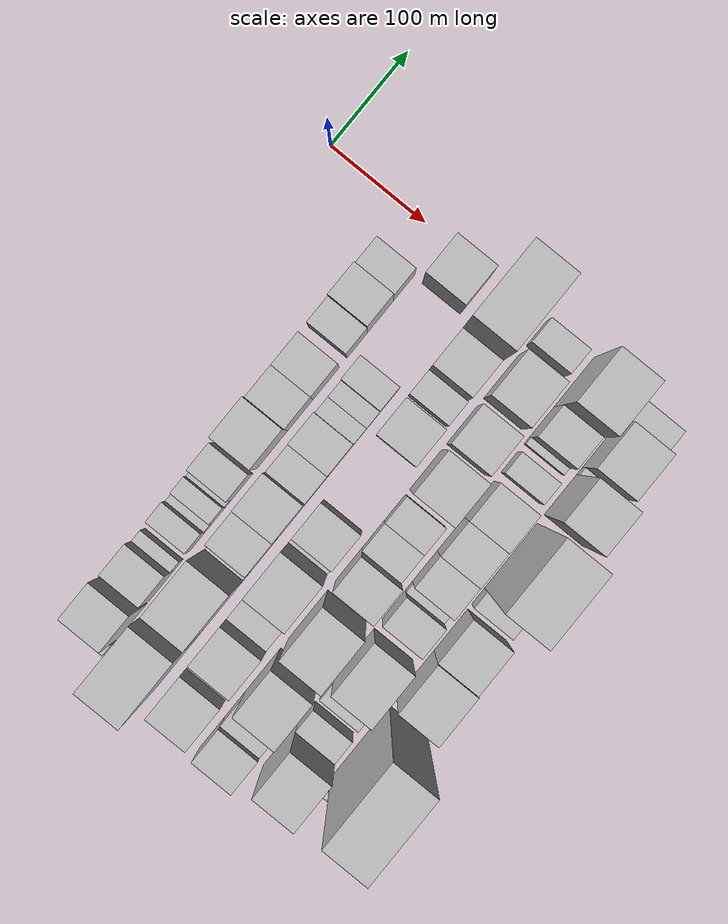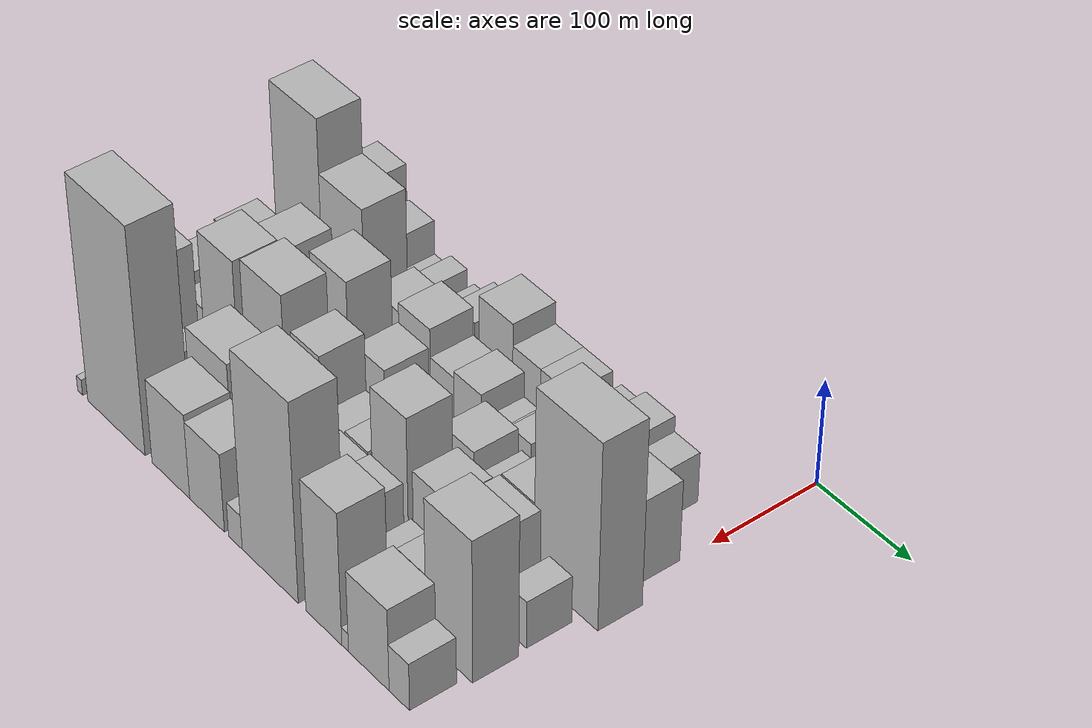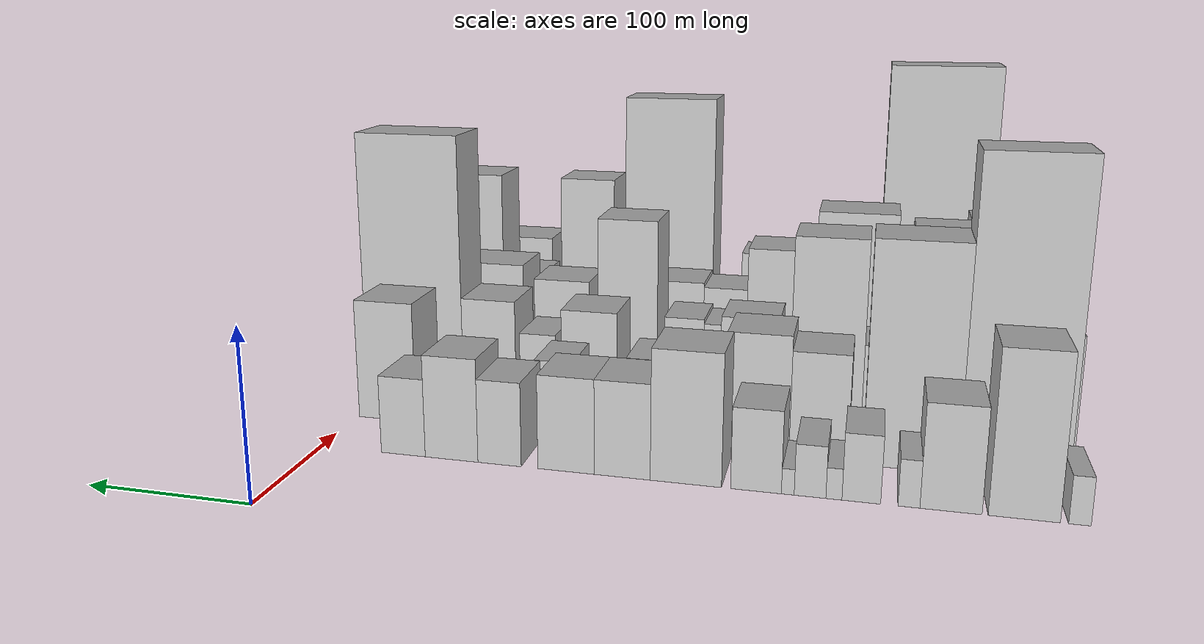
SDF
<sdf version="1.6">
 <world name="default">
  <model name="building_14">
   <static>1</static>
   <pose>100.0000 -428.7191 0 0.000000 0.000000 0.000000</pose>
   <link name="link">
    <pose>0 0 13.50 0 0 0</pose>
    <collision name="collision"><geometry><box><size>40.0000 10.9041 27.0000</size></box></geometry></collision>
    <visual name="visual">
     <cast_shadows>0</cast_shadows>
     <geometry><box><size>40.0000 10.9041 27.0000</size></box></geometry>
     <material>
      <script>
       <uri>model://HANNAS_wall/materials/scripts</uri>
       <uri>model://HANNAS_wall/materials/textures</uri>
       <name>vrc/HANNAS_wall</name>
      </script>
     </material>
    </visual>
   </link>
  </model>
  <model name="building_15">
   <static>1</static>
   <pose>100.0000 -401.4031 0 0.000000 0.000000 0.000000</pose>
   <link name="link">
    <pose>0 0 46.50 0 0 0</pose>
    <collision name="collision"><geometry><box><size>40.0000 35.7279 93.0000</size></box></geometry></collision>
    <visual name="visual">
     <cast_shadows>0</cast_shadows>
     <geometry><box><size>40.0000 35.7279 93.0000</size></box></geometry>
     <material>
      <script>
       <uri>model://HANNAS_wall/materials/scripts</uri>
       <uri>model://HANNAS_wall/materials/textures</uri>
       <name>vrc/HANNAS_wall</name>
      </script>
     </material>
    </visual>
   </link>
  </model>
  <model name="building_16">
   <static>1</static>
   <pose>100.0000 -364.7239 0 0.000000 0.000000 0.000000</pose>
   <link name="link">
    <pose>0 0 30.00 0 0 0</pose>
    <collision name="collision"><geometry><box><size>40.0000 31.6305 60.0000</size></box></geometry></collision>
    <visual name="visual">
     <cast_shadows>0</cast_shadows>
     <geometry><box><size>40.0000 31.6305 60.0000</size></box></geometry>
     <material>
      <script>
       <uri>model://HANNAS_wall/materials/scripts</uri>
       <uri>model://HANNAS_wall/materials/textures</uri>
       <name>vrc/HANNAS_wall</name>
      </script>
     </material>
    </visual>
   </link>
  </model>
  <model name="building_17">
   <static>1</static>
   <pose>100.0000 -343.2409 0 0.000000 0.000000 0.000000</pose>
   <link name="link">
    <pose>0 0 13.50 0 0 0</pose>
    <collision name="collision"><geometry><box><size>40.0000 11.3354 27.0000</size></box></geometry></collision>
    <visual name="visual">
     <cast_shadows>0</cast_shadows>
     <geometry><box><size>40.0000 11.3354 27.0000</size></box></geometry>
     <material>
      <script>
       <uri>model://HANNAS_wall/materials/scripts</uri>
       <uri>model://HANNAS_wall/materials/textures</uri>
       <name>vrc/HANNAS_wall</name>
      </script>
     </material>
    </visual>
   </link>
  </model>
  <model name="building_18">
   <static>1</static>
   <pose>100.0000 -318.3768 0 0.000000 0.000000 0.000000</pose>
   <link name="link">
    <pose>0 0 19.50 0 0 0</pose>
    <collision name="collision"><geometry><box><size>40.0000 20.3929 39.0000</size></box></geometry></collision>
    <visual name="visual">
     <cast_shadows>0</cast_shadows>
     <geometry><box><size>40.0000 20.3929 39.0000</size></box></geometry>
     <material>
      <script>
       <uri>model://HANNAS_wall/materials/scripts</uri>
       <uri>model://HANNAS_wall/materials/textures</uri>
       <name>vrc/HANNAS_wall</name>
      </script>
     </material>
    </visual>
   </link>
  </model>
  <model name="building_19">
   <static>1</static>
   <pose>100.0000 -303.9066 0 0.000000 0.000000 0.000000</pose>
   <link name="link">
    <pose>0 0 9.00 0 0 0</pose>
    <collision name="collision"><geometry><box><size>40.0000 8.5474 18.0000</size></box></geometry></collision>
    <visual name="visual">
     <cast_shadows>0</cast_shadows>
     <geometry><box><size>40.0000 8.5474 18.0000</size></box></geometry>
     <material>
      <script>
       <uri>model://HANNAS_wall/materials/scripts</uri>
       <uri>model://HANNAS_wall/materials/textures</uri>
       <name>vrc/HANNAS_wall</name>
      </script>
     </material>
    </visual>
   </link>
  </model>
  <model name="building_20">
   <static>1</static>
   <pose>100.0000 -291.0988 0 0.000000 0.000000 0.000000</pose>
   <link name="link">
    <pose>0 0 15.00 0 0 0</pose>
    <collision name="collision"><geometry><box><size>40.0000 17.0682 30.0000</size></box></geometry></collision>
    <visual name="visual">
     <cast_shadows>0</cast_shadows>
     <geometry><box><size>40.0000 17.0682 30.0000</size></box></geometry>
     <material>
      <script>
       <uri>model://HANNAS_wall/materials/scripts</uri>
       <uri>model://HANNAS_wall/materials/textures</uri>
       <name>vrc/HANNAS_wall</name>
      </script>
     </material>
    </visual>
   </link>
  </model>
  <model name="building_21">
   <static>1</static>
   <pose>100.0000 -279.0963 0 0.000000 0.000000 0.000000</pose>
   <link name="link">
    <pose>0 0 7.50 0 0 0</pose>
    <collision name="collision"><geometry><box><size>40.0000 6.9368 15.0000</size></box></geometry></collision>
    <visual name="visual">
     <cast_shadows>0</cast_shadows>
     <geometry><box><size>40.0000 6.9368 15.0000</size></box></geometry>
     <material>
      <script>
       <uri>model://HANNAS_wall/materials/scripts</uri>
       <uri>model://HANNAS_wall/materials/textures</uri>
       <name>vrc/HANNAS_wall</name>
      </script>
     </material>
    </visual>
   </link>
  </model>
  <model name="building_22">
   <static>1</static>
   <pose>100.0000 -261.6597 0 0.000000 0.000000 0.000000</pose>
   <link name="link">
    <pose>0 0 24.00 0 0 0</pose>
    <collision name="collision"><geometry><box><size>40.0000 27.9364 48.0000</size></box></geometry></collision>
    <visual name="visual">
     <cast_shadows>0</cast_shadows>
     <geometry><box><size>40.0000 27.9364 48.0000</size></box></geometry>
     <material>
      <script>
       <uri>model://HANNAS_wall/materials/scripts</uri>
       <uri>model://HANNAS_wall/materials/textures</uri>
       <name>vrc/HANNAS_wall</name>
      </script>
     </material>
    </visual>
   </link>
  </model>
  <model name="building_23">
   <static>1</static>
   <pose>100.0000 -222.5226 0 0.000000 0.000000 0.000000</pose>
   <link name="link">
    <pose>0 0 39.00 0 0 0</pose>
    <collision name="collision"><geometry><box><size>40.0000 40.3378 78.0000</size></box></geometry></collision>
    <visual name="visual">
     <cast_shadows>0</cast_shadows>
     <geometry><box><size>40.0000 40.3378 78.0000</size></box></geometry>
     <material>
      <script>
       <uri>model://HANNAS_wall/materials/scripts</uri>
       <uri>model://HANNAS_wall/materials/textures</uri>
       <name>vrc/HANNAS_wall</name>
      </script>
     </material>
    </visual>
   </link>
  </model>
  <model name="building_24">
   <static>1</static>
   <pose>100.0000 -186.0903 0 0.000000 0.000000 0.000000</pose>
   <link name="link">
    <pose>0 0 28.50 0 0 0</pose>
    <collision name="collision"><geometry><box><size>40.0000 32.5268 57.0000</size></box></geometry></collision>
    <visual name="visual">
     <cast_shadows>0</cast_shadows>
     <geometry><box><size>40.0000 32.5268 57.0000</size></box></geometry>
     <material>
      <script>
       <uri>model://HANNAS_wall/materials/scripts</uri>
       <uri>model://HANNAS_wall/materials/textures</uri>
       <name>vrc/HANNAS_wall</name>
      </script>
     </material>
    </visual>
   </link>
  </model>
  <model name="building_25">
   <static>1</static>
   <pose>100.0000 -153.0803 0 0.000000 0.000000 0.000000</pose>
   <link name="link">
    <pose>0 0 28.50 0 0 0</pose>
    <collision name="collision"><geometry><box><size>40.0000 33.4933 57.0000</size></box></geometry></collision>
    <visual name="visual">
     <cast_shadows>0</cast_shadows>
     <geometry><box><size>40.0000 33.4933 57.0000</size></box></geometry>
     <material>
      <script>
       <uri>model://HANNAS_wall/materials/scripts</uri>
       <uri>model://HANNAS_wall/materials/textures</uri>
       <name>vrc/HANNAS_wall</name>
      </script>
     </material>
    </visual>
   </link>
  </model>
  <model name="building_26">
   <static>1</static>
   <pose>100.0000 -113.0891 0 0.000000 0.000000 0.000000</pose>
   <link name="link">
    <pose>0 0 25.50 0 0 0</pose>
    <collision name="collision"><geometry><box><size>40.0000 26.4892 51.0000</size></box></geometry></collision>
    <visual name="visual">
     <cast_shadows>0</cast_shadows>
     <geometry><box><size>40.0000 26.4892 51.0000</size></box></geometry>
     <material>
      <script>
       <uri>model://HANNAS_wall/materials/scripts</uri>
       <uri>model://HANNAS_wall/materials/textures</uri>
       <name>vrc/HANNAS_wall</name>
      </script>
     </material>
    </visual>
   </link>
  </model>
  <model name="building_27">
   <static>1</static>
   <pose>100.0000 -83.3933 0 0.000000 0.000000 0.000000</pose>
   <link name="link">
    <pose>0 0 31.50 0 0 0</pose>
    <collision name="collision"><geometry><box><size>40.0000 32.9023 63.0000</size></box></geometry></collision>
    <visual name="visual">
     <cast_shadows>0</cast_shadows>
     <geometry><box><size>40.0000 32.9023 63.0000</size></box></geometry>
     <material>
      <script>
       <uri>model://HANNAS_wall/materials/scripts</uri>
       <uri>model://HANNAS_wall/materials/textures</uri>
       <name>vrc/HANNAS_wall</name>
      </script>
     </material>
    </visual>
   </link>
  </model>
  <model name="building_28">
   <static>1</static>
   <pose>100.0000 -52.9506 0 0.000000 0.000000 0.000000</pose>
   <link name="link">
    <pose>0 0 24.00 0 0 0</pose>
    <collision name="collision"><geometry><box><size>40.0000 27.9831 48.0000</size></box></geometry></collision>
    <visual name="visual">
     <cast_shadows>0</cast_shadows>
     <geometry><box><size>40.0000 27.9831 48.0000</size></box></geometry>
     <material>
      <script>
       <uri>model://HANNAS_wall/materials/scripts</uri>
       <uri>model://HANNAS_wall/materials/textures</uri>
       <name>vrc/HANNAS_wall</name>
      </script>
     </material>
    </visual>
   </link>
  </model>
  <model name="building_62">
   <static>1</static>
   <pose>149.0000 -401.1289 0 0.000000 0.000000 0.000000</pose>
   <link name="link">
    <pose>0 0 93.00 0 0 0</pose>
    <collision name="collision"><geometry><box><size>40.0000 59.5573 186.0000</size></box></geometry></collision>
    <visual name="visual">
     <cast_shadows>0</cast_shadows>
     <geometry><box><size>40.0000 59.5573 186.0000</size></box></geometry>
     <material>
      <script>
       <uri>model://HANNAS_wall/materials/scripts</uri>
       <uri>model://HANNAS_wall/materials/textures</uri>
       <name>vrc/HANNAS_wall</name>
      </script>
     </material>
    </visual>
   </link>
  </model>
  <model name="building_63">
   <static>1</static>
   <pose>149.0000 -344.7160 0 0.000000 0.000000 0.000000</pose>
   <link name="link">
    <pose>0 0 67.50 0 0 0</pose>
    <collision name="collision"><geometry><box><size>40.0000 53.2686 135.0000</size></box></geometry></collision>
    <visual name="visual">
     <cast_shadows>0</cast_shadows>
     <geometry><box><size>40.0000 53.2686 135.0000</size></box></geometry>
     <material>
      <script>
       <uri>model://HANNAS_wall/materials/scripts</uri>
       <uri>model://HANNAS_wall/materials/textures</uri>
       <name>vrc/HANNAS_wall</name>
      </script>
     </material>
    </visual>
   </link>
  </model>
  <model name="building_64">
   <static>1</static>
   <pose>149.0000 -313.8645 0 0.000000 0.000000 0.000000</pose>
   <link name="link">
    <pose>0 0 9.00 0 0 0</pose>
    <collision name="collision"><geometry><box><size>40.0000 8.4343 18.0000</size></box></geometry></collision>
    <visual name="visual">
     <cast_shadows>0</cast_shadows>
     <geometry><box><size>40.0000 8.4343 18.0000</size></box></geometry>
     <material>
      <script>
       <uri>model://HANNAS_wall/materials/scripts</uri>
       <uri>model://HANNAS_wall/materials/textures</uri>
       <name>vrc/HANNAS_wall</name>
      </script>
     </material>
    </visual>
   </link>
  </model>
  <model name="building_65">
   <static>1</static>
   <pose>149.0000 -292.6621 0 0.000000 0.000000 0.000000</pose>
   <link name="link">
    <pose>0 0 33.00 0 0 0</pose>
    <collision name="collision"><geometry><box><size>40.0000 33.9706 66.0000</size></box></geometry></collision>
    <visual name="visual">
     <cast_shadows>0</cast_shadows>
     <geometry><box><size>40.0000 33.9706 66.0000</size></box></geometry>
     <material>
      <script>
       <uri>model://HANNAS_wall/materials/scripts</uri>
       <uri>model://HANNAS_wall/materials/textures</uri>
       <name>vrc/HANNAS_wall</name>
      </script>
     </material>
    </visual>
   </link>
  </model>
  <model name="building_66">
   <static>1</static>
   <pose>149.0000 -256.7404 0 0.000000 0.000000 0.000000</pose>
   <link name="link">
    <pose>0 0 37.50 0 0 0</pose>
    <collision name="collision"><geometry><box><size>40.0000 37.8727 75.0000</size></box></geometry></collision>
    <visual name="visual">
     <cast_shadows>0</cast_shadows>
     <geometry><box><size>40.0000 37.8727 75.0000</size></box></geometry>
     <material>
      <script>
       <uri>model://HANNAS_wall/materials/scripts</uri>
       <uri>model://HANNAS_wall/materials/textures</uri>
       <name>vrc/HANNAS_wall</name>
      </script>
     </material>
    </visual>
   </link>
  </model>
  <model name="building_67">
   <static>1</static>
   <pose>149.0000 -223.7566 0 0.000000 0.000000 0.000000</pose>
   <link name="link">
    <pose>0 0 24.00 0 0 0</pose>
    <collision name="collision"><geometry><box><size>40.0000 28.0951 48.0000</size></box></geometry></collision>
    <visual name="visual">
     <cast_shadows>0</cast_shadows>
     <geometry><box><size>40.0000 28.0951 48.0000</size></box></geometry>
     <material>
      <script>
       <uri>model://HANNAS_wall/materials/scripts</uri>
       <uri>model://HANNAS_wall/materials/textures</uri>
       <name>vrc/HANNAS_wall</name>
      </script>
     </material>
    </visual>
   </link>
  </model>
  <model name="building_68">
   <static>1</static>
   <pose>149.0000 -193.5233 0 0.000000 0.000000 0.000000</pose>
   <link name="link">
    <pose>0 0 27.00 0 0 0</pose>
    <collision name="collision"><geometry><box><size>40.0000 32.3714 54.0000</size></box></geometry></collision>
    <visual name="visual">
     <cast_shadows>0</cast_shadows>
     <geometry><box><size>40.0000 32.3714 54.0000</size></box></geometry>
     <material>
      <script>
       <uri>model://HANNAS_wall/materials/scripts</uri>
       <uri>model://HANNAS_wall/materials/textures</uri>
       <name>vrc/HANNAS_wall</name>
      </script>
     </material>
    </visual>
   </link>
  </model>
  <model name="building_69">
   <static>1</static>
   <pose>149.0000 -169.1457 0 0.000000 0.000000 0.000000</pose>
   <link name="link">
    <pose>0 0 15.00 0 0 0</pose>
    <collision name="collision"><geometry><box><size>40.0000 16.3839 30.0000</size></box></geometry></collision>
    <visual name="visual">
     <cast_shadows>0</cast_shadows>
     <geometry><box><size>40.0000 16.3839 30.0000</size></box></geometry>
     <material>
      <script>
       <uri>model://HANNAS_wall/materials/scripts</uri>
       <uri>model://HANNAS_wall/materials/textures</uri>
       <name>vrc/HANNAS_wall</name>
      </script>
     </material>
    </visual>
   </link>
  </model>
  <model name="building_70">
   <static>1</static>
   <pose>149.0000 -152.4753 0 0.000000 0.000000 0.000000</pose>
   <link name="link">
    <pose>0 0 15.00 0 0 0</pose>
    <collision name="collision"><geometry><box><size>40.0000 16.9567 30.0000</size></box></geometry></collision>
    <visual name="visual">
     <cast_shadows>0</cast_shadows>
     <geometry><box><size>40.0000 16.9567 30.0000</size></box></geometry>
     <material>
      <script>
       <uri>model://HANNAS_wall/materials/scripts</uri>
       <uri>model://HANNAS_wall/materials/textures</uri>
       <name>vrc/HANNAS_wall</name>
      </script>
     </material>
    </visual>
   </link>
  </model>
  <model name="building_71">
   <static>1</static>
   <pose>149.0000 -131.6888 0 0.000000 0.000000 0.000000</pose>
   <link name="link">
    <pose>0 0 24.00 0 0 0</pose>
    <collision name="collision"><geometry><box><size>40.0000 24.6163 48.0000</size></box></geometry></collision>
    <visual name="visual">
     <cast_shadows>0</cast_shadows>
     <geometry><box><size>40.0000 24.6163 48.0000</size></box></geometry>
     <material>
      <script>
       <uri>model://HANNAS_wall/materials/scripts</uri>
       <uri>model://HANNAS_wall/materials/textures</uri>
       <name>vrc/HANNAS_wall</name>
      </script>
     </material>
    </visual>
   </link>
  </model>
  <model name="building_72">
   <static>1</static>
   <pose>149.0000 -20.7572 0 0.000000 0.000000 0.000000</pose>
   <link name="link">
    <pose>0 0 39.00 0 0 0</pose>
    <collision name="collision"><geometry><box><size>40.0000 39.0823 78.0000</size></box></geometry></collision>
    <visual name="visual">
     <cast_shadows>0</cast_shadows>
     <geometry><box><size>40.0000 39.0823 78.0000</size></box></geometry>
     <material>
      <script>
       <uri>model://HANNAS_wall/materials/scripts</uri>
       <uri>model://HANNAS_wall/materials/textures</uri>
       <name>vrc/HANNAS_wall</name>
      </script>
     </material>
    </visual>
   </link>
  </model>
  <model name="building_107">
   <static>1</static>
   <pose>198.0000 -419.9244 0 0.000000 0.000000 0.000000</pose>
   <link name="link">
    <pose>0 0 36.00 0 0 0</pose>
    <collision name="collision"><geometry><box><size>40.0000 42.3488 72.0000</size></box></geometry></collision>
    <visual name="visual">
     <cast_shadows>0</cast_shadows>
     <geometry><box><size>40.0000 42.3488 72.0000</size></box></geometry>
     <material>
      <script>
       <uri>model://HANNAS_wall/materials/scripts</uri>
       <uri>model://HANNAS_wall/materials/textures</uri>
       <name>vrc/HANNAS_wall</name>
      </script>
     </material>
    </visual>
   </link>
  </model>
  <model name="building_108">
   <static>1</static>
   <pose>198.0000 -390.8635 0 0.000000 0.000000 0.000000</pose>
   <link name="link">
    <pose>0 0 15.00 0 0 0</pose>
    <collision name="collision"><geometry><box><size>40.0000 15.7730 30.0000</size></box></geometry></collision>
    <visual name="visual">
     <cast_shadows>0</cast_shadows>
     <geometry><box><size>40.0000 15.7730 30.0000</size></box></geometry>
     <material>
      <script>
       <uri>model://HANNAS_wall/materials/scripts</uri>
       <uri>model://HANNAS_wall/materials/textures</uri>
       <name>vrc/HANNAS_wall</name>
      </script>
     </material>
    </visual>
   </link>
  </model>
  <model name="building_109">
   <static>1</static>
   <pose>198.0000 -363.8045 0 0.000000 0.000000 0.000000</pose>
   <link name="link">
    <pose>0 0 52.50 0 0 0</pose>
    <collision name="collision"><geometry><box><size>40.0000 38.3450 105.0000</size></box></geometry></collision>
    <visual name="visual">
     <cast_shadows>0</cast_shadows>
     <geometry><box><size>40.0000 38.3450 105.0000</size></box></geometry>
     <material>
      <script>
       <uri>model://HANNAS_wall/materials/scripts</uri>
       <uri>model://HANNAS_wall/materials/textures</uri>
       <name>vrc/HANNAS_wall</name>
      </script>
     </material>
    </visual>
   </link>
  </model>
  <model name="building_110">
   <static>1</static>
   <pose>198.0000 -330.3335 0 0.000000 0.000000 0.000000</pose>
   <link name="link">
    <pose>0 0 28.50 0 0 0</pose>
    <collision name="collision"><geometry><box><size>40.0000 28.5971 57.0000</size></box></geometry></collision>
    <visual name="visual">
     <cast_shadows>0</cast_shadows>
     <geometry><box><size>40.0000 28.5971 57.0000</size></box></geometry>
     <material>
      <script>
       <uri>model://HANNAS_wall/materials/scripts</uri>
       <uri>model://HANNAS_wall/materials/textures</uri>
       <name>vrc/HANNAS_wall</name>
      </script>
     </material>
    </visual>
   </link>
  </model>
  <model name="building_111">
   <static>1</static>
   <pose>198.0000 -293.7078 0 0.000000 0.000000 0.000000</pose>
   <link name="link">
    <pose>0 0 61.50 0 0 0</pose>
    <collision name="collision"><geometry><box><size>40.0000 44.6543 123.0000</size></box></geometry></collision>
    <visual name="visual">
     <cast_shadows>0</cast_shadows>
     <geometry><box><size>40.0000 44.6543 123.0000</size></box></geometry>
     <material>
      <script>
       <uri>model://HANNAS_wall/materials/scripts</uri>
       <uri>model://HANNAS_wall/materials/textures</uri>
       <name>vrc/HANNAS_wall</name>
      </script>
     </material>
    </visual>
   </link>
  </model>
  <model name="building_112">
   <static>1</static>
   <pose>198.0000 -267.6326 0 0.000000 0.000000 0.000000</pose>
   <link name="link">
    <pose>0 0 9.00 0 0 0</pose>
    <collision name="collision"><geometry><box><size>40.0000 7.4962 18.0000</size></box></geometry></collision>
    <visual name="visual">
     <cast_shadows>0</cast_shadows>
     <geometry><box><size>40.0000 7.4962 18.0000</size></box></geometry>
     <material>
      <script>
       <uri>model://HANNAS_wall/materials/scripts</uri>
       <uri>model://HANNAS_wall/materials/textures</uri>
       <name>vrc/HANNAS_wall</name>
      </script>
     </material>
    </visual>
   </link>
  </model>
  <model name="building_113">
   <static>1</static>
   <pose>198.0000 -245.7372 0 0.000000 0.000000 0.000000</pose>
   <link name="link">
    <pose>0 0 34.50 0 0 0</pose>
    <collision name="collision"><geometry><box><size>40.0000 36.2946 69.0000</size></box></geometry></collision>
    <visual name="visual">
     <cast_shadows>0</cast_shadows>
     <geometry><box><size>40.0000 36.2946 69.0000</size></box></geometry>
     <material>
      <script>
       <uri>model://HANNAS_wall/materials/scripts</uri>
       <uri>model://HANNAS_wall/materials/textures</uri>
       <name>vrc/HANNAS_wall</name>
      </script>
     </material>
    </visual>
   </link>
  </model>
  <model name="building_114">
   <static>1</static>
   <pose>198.0000 -141.5243 0 0.000000 0.000000 0.000000</pose>
   <link name="link">
    <pose>0 0 33.00 0 0 0</pose>
    <collision name="collision"><geometry><box><size>40.0000 37.3771 66.0000</size></box></geometry></collision>
    <visual name="visual">
     <cast_shadows>0</cast_shadows>
     <geometry><box><size>40.0000 37.3771 66.0000</size></box></geometry>
     <material>
      <script>
       <uri>model://HANNAS_wall/materials/scripts</uri>
       <uri>model://HANNAS_wall/materials/textures</uri>
       <name>vrc/HANNAS_wall</name>
      </script>
     </material>
    </visual>
   </link>
  </model>
  <model name="building_115">
   <static>1</static>
   <pose>198.0000 -106.5794 0 0.000000 0.000000 0.000000</pose>
   <link name="link">
    <pose>0 0 24.00 0 0 0</pose>
    <collision name="collision"><geometry><box><size>40.0000 24.5127 48.0000</size></box></geometry></collision>
    <visual name="visual">
     <cast_shadows>0</cast_shadows>
     <geometry><box><size>40.0000 24.5127 48.0000</size></box></geometry>
     <material>
      <script>
       <uri>model://HANNAS_wall/materials/scripts</uri>
       <uri>model://HANNAS_wall/materials/textures</uri>
       <name>vrc/HANNAS_wall</name>
      </script>
     </material>
    </visual>
   </link>
  </model>
  <model name="building_116">
   <static>1</static>
   <pose>198.0000 -72.7229 0 0.000000 0.000000 0.000000</pose>
   <link name="link">
    <pose>0 0 34.50 0 0 0</pose>
    <collision name="collision"><geometry><box><size>40.0000 37.2005 69.0000</size></box></geometry></collision>
    <visual name="visual">
     <cast_shadows>0</cast_shadows>
     <geometry><box><size>40.0000 37.2005 69.0000</size></box></geometry>
     <material>
      <script>
       <uri>model://HANNAS_wall/materials/scripts</uri>
       <uri>model://HANNAS_wall/materials/textures</uri>
       <name>vrc/HANNAS_wall</name>
      </script>
     </material>
    </visual>
   </link>
  </model>
  <model name="building_117">
   <static>1</static>
   <pose>198.0000 -18.9332 0 0.000000 0.000000 0.000000</pose>
   <link name="link">
    <pose>0 0 88.50 0 0 0</pose>
    <collision name="collision"><geometry><box><size>40.0000 70.3789 177.0000</size></box></geometry></collision>
    <visual name="visual">
     <cast_shadows>0</cast_shadows>
     <geometry><box><size>40.0000 70.3789 177.0000</size></box></geometry>
     <material>
      <script>
       <uri>model://HANNAS_wall/materials/scripts</uri>
       <uri>model://HANNAS_wall/materials/textures</uri>
       <name>vrc/HANNAS_wall</name>
      </script>
     </material>
    </visual>
   </link>
  </model>
  <model name="building_155">
   <static>1</static>
   <pose>247.0000 -431.1334 0 0.000000 0.000000 0.000000</pose>
   <link name="link">
    <pose>0 0 28.50 0 0 0</pose>
    <collision name="collision"><geometry><box><size>40.0000 33.2765 57.0000</size></box></geometry></collision>
    <visual name="visual">
     <cast_shadows>0</cast_shadows>
     <geometry><box><size>40.0000 33.2765 57.0000</size></box></geometry>
     <material>
      <script>
       <uri>model://HANNAS_wall/materials/scripts</uri>
       <uri>model://HANNAS_wall/materials/textures</uri>
       <name>vrc/HANNAS_wall</name>
      </script>
     </material>
    </visual>
   </link>
  </model>
  <model name="building_156">
   <static>1</static>
   <pose>247.0000 -401.3269 0 0.000000 0.000000 0.000000</pose>
   <link name="link">
    <pose>0 0 22.50 0 0 0</pose>
    <collision name="collision"><geometry><box><size>40.0000 26.3366 45.0000</size></box></geometry></collision>
    <visual name="visual">
     <cast_shadows>0</cast_shadows>
     <geometry><box><size>40.0000 26.3366 45.0000</size></box></geometry>
     <material>
      <script>
       <uri>model://HANNAS_wall/materials/scripts</uri>
       <uri>model://HANNAS_wall/materials/textures</uri>
       <name>vrc/HANNAS_wall</name>
      </script>
     </material>
    </visual>
   </link>
  </model>
  <model name="building_157">
   <static>1</static>
   <pose>247.0000 -365.7767 0 0.000000 0.000000 0.000000</pose>
   <link name="link">
    <pose>0 0 60.00 0 0 0</pose>
    <collision name="collision"><geometry><box><size>40.0000 44.7638 120.0000</size></box></geometry></collision>
    <visual name="visual">
     <cast_shadows>0</cast_shadows>
     <geometry><box><size>40.0000 44.7638 120.0000</size></box></geometry>
     <material>
      <script>
       <uri>model://HANNAS_wall/materials/scripts</uri>
       <uri>model://HANNAS_wall/materials/textures</uri>
       <name>vrc/HANNAS_wall</name>
      </script>
     </material>
    </visual>
   </link>
  </model>
  <model name="building_158">
   <static>1</static>
   <pose>247.0000 -307.9461 0 0.000000 0.000000 0.000000</pose>
   <link name="link">
    <pose>0 0 64.50 0 0 0</pose>
    <collision name="collision"><geometry><box><size>40.0000 50.8974 129.0000</size></box></geometry></collision>
    <visual name="visual">
     <cast_shadows>0</cast_shadows>
     <geometry><box><size>40.0000 50.8974 129.0000</size></box></geometry>
     <material>
      <script>
       <uri>model://HANNAS_wall/materials/scripts</uri>
       <uri>model://HANNAS_wall/materials/textures</uri>
       <name>vrc/HANNAS_wall</name>
      </script>
     </material>
    </visual>
   </link>
  </model>
  <model name="building_159">
   <static>1</static>
   <pose>247.0000 -255.2645 0 0.000000 0.000000 0.000000</pose>
   <link name="link">
    <pose>0 0 51.00 0 0 0</pose>
    <collision name="collision"><geometry><box><size>40.0000 34.4656 102.0000</size></box></geometry></collision>
    <visual name="visual">
     <cast_shadows>0</cast_shadows>
     <geometry><box><size>40.0000 34.4656 102.0000</size></box></geometry>
     <material>
      <script>
       <uri>model://HANNAS_wall/materials/scripts</uri>
       <uri>model://HANNAS_wall/materials/textures</uri>
       <name>vrc/HANNAS_wall</name>
      </script>
     </material>
    </visual>
   </link>
  </model>
  <model name="building_160">
   <static>1</static>
   <pose>247.0000 -223.7564 0 0.000000 0.000000 0.000000</pose>
   <link name="link">
    <pose>0 0 24.00 0 0 0</pose>
    <collision name="collision"><geometry><box><size>40.0000 28.5506 48.0000</size></box></geometry></collision>
    <visual name="visual">
     <cast_shadows>0</cast_shadows>
     <geometry><box><size>40.0000 28.5506 48.0000</size></box></geometry>
     <material>
      <script>
       <uri>model://HANNAS_wall/materials/scripts</uri>
       <uri>model://HANNAS_wall/materials/textures</uri>
       <name>vrc/HANNAS_wall</name>
      </script>
     </material>
    </visual>
   </link>
  </model>
  <model name="building_161">
   <static>1</static>
   <pose>247.0000 -195.8212 0 0.000000 0.000000 0.000000</pose>
   <link name="link">
    <pose>0 0 25.50 0 0 0</pose>
    <collision name="collision"><geometry><box><size>40.0000 27.3198 51.0000</size></box></geometry></collision>
    <visual name="visual">
     <cast_shadows>0</cast_shadows>
     <geometry><box><size>40.0000 27.3198 51.0000</size></box></geometry>
     <material>
      <script>
       <uri>model://HANNAS_wall/materials/scripts</uri>
       <uri>model://HANNAS_wall/materials/textures</uri>
       <name>vrc/HANNAS_wall</name>
      </script>
     </material>
    </visual>
   </link>
  </model>
  <model name="building_162">
   <static>1</static>
   <pose>247.0000 -156.2621 0 0.000000 0.000000 0.000000</pose>
   <link name="link">
    <pose>0 0 58.50 0 0 0</pose>
    <collision name="collision"><geometry><box><size>40.0000 41.7986 117.0000</size></box></geometry></collision>
    <visual name="visual">
     <cast_shadows>0</cast_shadows>
     <geometry><box><size>40.0000 41.7986 117.0000</size></box></geometry>
     <material>
      <script>
       <uri>model://HANNAS_wall/materials/scripts</uri>
       <uri>model://HANNAS_wall/materials/textures</uri>
       <name>vrc/HANNAS_wall</name>
      </script>
     </material>
    </visual>
   </link>
  </model>
  <model name="building_163">
   <static>1</static>
   <pose>247.0000 -109.4902 0 0.000000 0.000000 0.000000</pose>
   <link name="link">
    <pose>0 0 36.00 0 0 0</pose>
    <collision name="collision"><geometry><box><size>40.0000 39.7451 72.0000</size></box></geometry></collision>
    <visual name="visual">
     <cast_shadows>0</cast_shadows>
     <geometry><box><size>40.0000 39.7451 72.0000</size></box></geometry>
     <material>
      <script>
       <uri>model://HANNAS_wall/materials/scripts</uri>
       <uri>model://HANNAS_wall/materials/textures</uri>
       <name>vrc/HANNAS_wall</name>
      </script>
     </material>
    </visual>
   </link>
  </model>
  <model name="building_164">
   <static>1</static>
   <pose>247.0000 -58.9321 0 0.000000 0.000000 0.000000</pose>
   <link name="link">
    <pose>0 0 40.50 0 0 0</pose>
    <collision name="collision"><geometry><box><size>40.0000 45.3710 81.0000</size></box></geometry></collision>
    <visual name="visual">
     <cast_shadows>0</cast_shadows>
     <geometry><box><size>40.0000 45.3710 81.0000</size></box></geometry>
     <material>
      <script>
       <uri>model://HANNAS_wall/materials/scripts</uri>
       <uri>model://HANNAS_wall/materials/textures</uri>
       <name>vrc/HANNAS_wall</name>
      </script>
     </material>
    </visual>
   </link>
  </model>
  <model name="building_165">
   <static>1</static>
   <pose>247.0000 -13.7439 0 0.000000 0.000000 0.000000</pose>
   <link name="link">
    <pose>0 0 22.50 0 0 0</pose>
    <collision name="collision"><geometry><box><size>40.0000 25.0055 45.0000</size></box></geometry></collision>
    <visual name="visual">
     <cast_shadows>0</cast_shadows>
     <geometry><box><size>40.0000 25.0055 45.0000</size></box></geometry>
     <material>
      <script>
       <uri>model://HANNAS_wall/materials/scripts</uri>
       <uri>model://HANNAS_wall/materials/textures</uri>
       <name>vrc/HANNAS_wall</name>
      </script>
     </material>
    </visual>
   </link>
  </model>
  <model name="building_202">
   <static>1</static>
   <pose>296.0000 -403.6270 0 0.000000 0.000000 0.000000</pose>
   <link name="link">
    <pose>0 0 58.50 0 0 0</pose>
    <collision name="collision"><geometry><box><size>40.0000 44.6785 117.0000</size></box></geometry></collision>
    <visual name="visual">
     <cast_shadows>0</cast_shadows>
     <geometry><box><size>40.0000 44.6785 117.0000</size></box></geometry>
     <material>
      <script>
       <uri>model://HANNAS_wall/materials/scripts</uri>
       <uri>model://HANNAS_wall/materials/textures</uri>
       <name>vrc/HANNAS_wall</name>
      </script>
     </material>
    </visual>
   </link>
  </model>
  <model name="building_203">
   <static>1</static>
   <pose>296.0000 -370.1344 0 0.000000 0.000000 0.000000</pose>
   <link name="link">
    <pose>0 0 21.00 0 0 0</pose>
    <collision name="collision"><geometry><box><size>40.0000 22.3067 42.0000</size></box></geometry></collision>
    <visual name="visual">
     <cast_shadows>0</cast_shadows>
     <geometry><box><size>40.0000 22.3067 42.0000</size></box></geometry>
     <material>
      <script>
       <uri>model://HANNAS_wall/materials/scripts</uri>
       <uri>model://HANNAS_wall/materials/textures</uri>
       <name>vrc/HANNAS_wall</name>
      </script>
     </material>
    </visual>
   </link>
  </model>
  <model name="building_204">
   <static>1</static>
   <pose>296.0000 -343.4900 0 0.000000 0.000000 0.000000</pose>
   <link name="link">
    <pose>0 0 15.00 0 0 0</pose>
    <collision name="collision"><geometry><box><size>40.0000 16.9821 30.0000</size></box></geometry></collision>
    <visual name="visual">
     <cast_shadows>0</cast_shadows>
     <geometry><box><size>40.0000 16.9821 30.0000</size></box></geometry>
     <material>
      <script>
       <uri>model://HANNAS_wall/materials/scripts</uri>
       <uri>model://HANNAS_wall/materials/textures</uri>
       <name>vrc/HANNAS_wall</name>
      </script>
     </material>
    </visual>
   </link>
  </model>
  <model name="building_205">
   <static>1</static>
   <pose>296.0000 -308.8481 0 0.000000 0.000000 0.000000</pose>
   <link name="link">
    <pose>0 0 45.00 0 0 0</pose>
    <collision name="collision"><geometry><box><size>40.0000 52.3016 90.0000</size></box></geometry></collision>
    <visual name="visual">
     <cast_shadows>0</cast_shadows>
     <geometry><box><size>40.0000 52.3016 90.0000</size></box></geometry>
     <material>
      <script>
       <uri>model://HANNAS_wall/materials/scripts</uri>
       <uri>model://HANNAS_wall/materials/textures</uri>
       <name>vrc/HANNAS_wall</name>
      </script>
     </material>
    </visual>
   </link>
  </model>
  <model name="building_206">
   <static>1</static>
   <pose>296.0000 -257.8110 0 0.000000 0.000000 0.000000</pose>
   <link name="link">
    <pose>0 0 28.50 0 0 0</pose>
    <collision name="collision"><geometry><box><size>40.0000 29.7726 57.0000</size></box></geometry></collision>
    <visual name="visual">
     <cast_shadows>0</cast_shadows>
     <geometry><box><size>40.0000 29.7726 57.0000</size></box></geometry>
     <material>
      <script>
       <uri>model://HANNAS_wall/materials/scripts</uri>
       <uri>model://HANNAS_wall/materials/textures</uri>
       <name>vrc/HANNAS_wall</name>
      </script>
     </material>
    </visual>
   </link>
  </model>
  <model name="building_207">
   <static>1</static>
   <pose>296.0000 -238.2294 0 0.000000 0.000000 0.000000</pose>
   <link name="link">
    <pose>0 0 10.50 0 0 0</pose>
    <collision name="collision"><geometry><box><size>40.0000 9.3906 21.0000</size></box></geometry></collision>
    <visual name="visual">
     <cast_shadows>0</cast_shadows>
     <geometry><box><size>40.0000 9.3906 21.0000</size></box></geometry>
     <material>
      <script>
       <uri>model://HANNAS_wall/materials/scripts</uri>
       <uri>model://HANNAS_wall/materials/textures</uri>
       <name>vrc/HANNAS_wall</name>
      </script>
     </material>
    </visual>
   </link>
  </model>
  <model name="building_208">
   <static>1</static>
   <pose>296.0000 -217.5883 0 0.000000 0.000000 0.000000</pose>
   <link name="link">
    <pose>0 0 30.00 0 0 0</pose>
    <collision name="collision"><geometry><box><size>40.0000 31.8917 60.0000</size></box></geometry></collision>
    <visual name="visual">
     <cast_shadows>0</cast_shadows>
     <geometry><box><size>40.0000 31.8917 60.0000</size></box></geometry>
     <material>
      <script>
       <uri>model://HANNAS_wall/materials/scripts</uri>
       <uri>model://HANNAS_wall/materials/textures</uri>
       <name>vrc/HANNAS_wall</name>
      </script>
     </material>
    </visual>
   </link>
  </model>
  <model name="building_209">
   <static>1</static>
   <pose>296.0000 -184.1493 0 0.000000 0.000000 0.000000</pose>
   <link name="link">
    <pose>0 0 31.50 0 0 0</pose>
    <collision name="collision"><geometry><box><size>40.0000 34.9862 63.0000</size></box></geometry></collision>
    <visual name="visual">
     <cast_shadows>0</cast_shadows>
     <geometry><box><size>40.0000 34.9862 63.0000</size></box></geometry>
     <material>
      <script>
       <uri>model://HANNAS_wall/materials/scripts</uri>
       <uri>model://HANNAS_wall/materials/textures</uri>
       <name>vrc/HANNAS_wall</name>
      </script>
     </material>
    </visual>
   </link>
  </model>
  <model name="building_210">
   <static>1</static>
   <pose>296.0000 -147.4886 0 0.000000 0.000000 0.000000</pose>
   <link name="link">
    <pose>0 0 33.00 0 0 0</pose>
    <collision name="collision"><geometry><box><size>40.0000 38.3351 66.0000</size></box></geometry></collision>
    <visual name="visual">
     <cast_shadows>0</cast_shadows>
     <geometry><box><size>40.0000 38.3351 66.0000</size></box></geometry>
     <material>
      <script>
       <uri>model://HANNAS_wall/materials/scripts</uri>
       <uri>model://HANNAS_wall/materials/textures</uri>
       <name>vrc/HANNAS_wall</name>
      </script>
     </material>
    </visual>
   </link>
  </model>
  <model name="building_211">
   <static>1</static>
   <pose>296.0000 -108.4655 0 0.000000 0.000000 0.000000</pose>
   <link name="link">
    <pose>0 0 19.50 0 0 0</pose>
    <collision name="collision"><geometry><box><size>40.0000 21.7110 39.0000</size></box></geometry></collision>
    <visual name="visual">
     <cast_shadows>0</cast_shadows>
     <geometry><box><size>40.0000 21.7110 39.0000</size></box></geometry>
     <material>
      <script>
       <uri>model://HANNAS_wall/materials/scripts</uri>
       <uri>model://HANNAS_wall/materials/textures</uri>
       <name>vrc/HANNAS_wall</name>
      </script>
     </material>
    </visual>
   </link>
  </model>
  <model name="building_212">
   <static>1</static>
   <pose>296.0000 -86.0729 0 0.000000 0.000000 0.000000</pose>
   <link name="link">
    <pose>0 0 7.50 0 0 0</pose>
    <collision name="collision"><geometry><box><size>40.0000 7.0743 15.0000</size></box></geometry></collision>
    <visual name="visual">
     <cast_shadows>0</cast_shadows>
     <geometry><box><size>40.0000 7.0743 15.0000</size></box></geometry>
     <material>
      <script>
       <uri>model://HANNAS_wall/materials/scripts</uri>
       <uri>model://HANNAS_wall/materials/textures</uri>
       <name>vrc/HANNAS_wall</name>
      </script>
     </material>
    </visual>
   </link>
  </model>
  <model name="building_213">
   <static>1</static>
   <pose>296.0000 -66.5251 0 0.000000 0.000000 0.000000</pose>
   <link name="link">
    <pose>0 0 31.50 0 0 0</pose>
    <collision name="collision"><geometry><box><size>40.0000 32.0213 63.0000</size></box></geometry></collision>
    <visual name="visual">
     <cast_shadows>0</cast_shadows>
     <geometry><box><size>40.0000 32.0213 63.0000</size></box></geometry>
     <material>
      <script>
       <uri>model://HANNAS_wall/materials/scripts</uri>
       <uri>model://HANNAS_wall/materials/textures</uri>
       <name>vrc/HANNAS_wall</name>
      </script>
     </material>
    </visual>
   </link>
  </model>
  <model name="building_214">
   <static>1</static>
   <pose>296.0000 -24.4264 0 0.000000 0.000000 0.000000</pose>
   <link name="link">
    <pose>0 0 67.50 0 0 0</pose>
    <collision name="collision"><geometry><box><size>40.0000 52.1761 135.0000</size></box></geometry></collision>
    <visual name="visual">
     <cast_shadows>0</cast_shadows>
     <geometry><box><size>40.0000 52.1761 135.0000</size></box></geometry>
     <material>
      <script>
       <uri>model://HANNAS_wall/materials/scripts</uri>
       <uri>model://HANNAS_wall/materials/textures</uri>
       <name>vrc/HANNAS_wall</name>
      </script>
     </material>
    </visual>
   </link>
  </model>
  <model name="building_251">
   <static>1</static>
   <pose>345.0000 -409.5366 0 0.000000 0.000000 0.000000</pose>
   <link name="link">
    <pose>0 0 7.50 0 0 0</pose>
    <collision name="collision"><geometry><box><size>40.0000 6.6494 15.0000</size></box></geometry></collision>
    <visual name="visual">
     <cast_shadows>0</cast_shadows>
     <geometry><box><size>40.0000 6.6494 15.0000</size></box></geometry>
     <material>
      <script>
       <uri>model://HANNAS_wall/materials/scripts</uri>
       <uri>model://HANNAS_wall/materials/textures</uri>
       <name>vrc/HANNAS_wall</name>
      </script>
     </material>
    </visual>
   </link>
  </model>
  <model name="building_252">
   <static>1</static>
   <pose>345.0000 -361.3215 0 0.000000 0.000000 0.000000</pose>
   <link name="link">
    <pose>0 0 108.00 0 0 0</pose>
    <collision name="collision"><geometry><box><size>40.0000 75.7809 216.0000</size></box></geometry></collision>
    <visual name="visual">
     <cast_shadows>0</cast_shadows>
     <geometry><box><size>40.0000 75.7809 216.0000</size></box></geometry>
     <material>
      <script>
       <uri>model://HANNAS_wall/materials/scripts</uri>
       <uri>model://HANNAS_wall/materials/textures</uri>
       <name>vrc/HANNAS_wall</name>
      </script>
     </material>
    </visual>
   </link>
  </model>
  <model name="building_253">
   <static>1</static>
   <pose>345.0000 -290.2826 0 0.000000 0.000000 0.000000</pose>
   <link name="link">
    <pose>0 0 40.50 0 0 0</pose>
    <collision name="collision"><geometry><box><size>40.0000 48.2969 81.0000</size></box></geometry></collision>
    <visual name="visual">
     <cast_shadows>0</cast_shadows>
     <geometry><box><size>40.0000 48.2969 81.0000</size></box></geometry>
     <material>
      <script>
       <uri>model://HANNAS_wall/materials/scripts</uri>
       <uri>model://HANNAS_wall/materials/textures</uri>
       <name>vrc/HANNAS_wall</name>
      </script>
     </material>
    </visual>
   </link>
  </model>
  <model name="building_254">
   <static>1</static>
   <pose>345.0000 -244.3753 0 0.000000 0.000000 0.000000</pose>
   <link name="link">
    <pose>0 0 37.50 0 0 0</pose>
    <collision name="collision"><geometry><box><size>40.0000 43.5178 75.0000</size></box></geometry></collision>
    <visual name="visual">
     <cast_shadows>0</cast_shadows>
     <geometry><box><size>40.0000 43.5178 75.0000</size></box></geometry>
     <material>
      <script>
       <uri>model://HANNAS_wall/materials/scripts</uri>
       <uri>model://HANNAS_wall/materials/textures</uri>
       <name>vrc/HANNAS_wall</name>
      </script>
     </material>
    </visual>
   </link>
  </model>
  <model name="building_255">
   <static>1</static>
   <pose>345.0000 -209.1612 0 0.000000 0.000000 0.000000</pose>
   <link name="link">
    <pose>0 0 16.50 0 0 0</pose>
    <collision name="collision"><geometry><box><size>40.0000 16.9104 33.0000</size></box></geometry></collision>
    <visual name="visual">
     <cast_shadows>0</cast_shadows>
     <geometry><box><size>40.0000 16.9104 33.0000</size></box></geometry>
     <material>
      <script>
       <uri>model://HANNAS_wall/materials/scripts</uri>
       <uri>model://HANNAS_wall/materials/textures</uri>
       <name>vrc/HANNAS_wall</name>
      </script>
     </material>
    </visual>
   </link>
  </model>
  <model name="building_256">
   <static>1</static>
   <pose>345.0000 -166.8159 0 0.000000 0.000000 0.000000</pose>
   <link name="link">
    <pose>0 0 94.50 0 0 0</pose>
    <collision name="collision"><geometry><box><size>40.0000 67.7801 189.0000</size></box></geometry></collision>
    <visual name="visual">
     <cast_shadows>0</cast_shadows>
     <geometry><box><size>40.0000 67.7801 189.0000</size></box></geometry>
     <material>
      <script>
       <uri>model://HANNAS_wall/materials/scripts</uri>
       <uri>model://HANNAS_wall/materials/textures</uri>
       <name>vrc/HANNAS_wall</name>
      </script>
     </material>
    </visual>
   </link>
  </model>
  <model name="building_257">
   <static>1</static>
   <pose>345.0000 -102.8293 0 0.000000 0.000000 0.000000</pose>
   <link name="link">
    <pose>0 0 63.00 0 0 0</pose>
    <collision name="collision"><geometry><box><size>40.0000 42.1931 126.0000</size></box></geometry></collision>
    <visual name="visual">
     <cast_shadows>0</cast_shadows>
     <geometry><box><size>40.0000 42.1931 126.0000</size></box></geometry>
     <material>
      <script>
       <uri>model://HANNAS_wall/materials/scripts</uri>
       <uri>model://HANNAS_wall/materials/textures</uri>
       <name>vrc/HANNAS_wall</name>
      </script>
     </material>
    </visual>
   </link>
  </model>
  <model name="building_258">
   <static>1</static>
   <pose>345.0000 -77.8746 0 0.000000 0.000000 0.000000</pose>
   <link name="link">
    <pose>0 0 9.00 0 0 0</pose>
    <collision name="collision"><geometry><box><size>40.0000 7.7164 18.0000</size></box></geometry></collision>
    <visual name="visual">
     <cast_shadows>0</cast_shadows>
     <geometry><box><size>40.0000 7.7164 18.0000</size></box></geometry>
     <material>
      <script>
       <uri>model://HANNAS_wall/materials/scripts</uri>
       <uri>model://HANNAS_wall/materials/textures</uri>
       <name>vrc/HANNAS_wall</name>
      </script>
     </material>
    </visual>
   </link>
  </model>
  <model name="building_259">
   <static>1</static>
   <pose>345.0000 -50.8318 0 0.000000 0.000000 0.000000</pose>
   <link name="link">
    <pose>0 0 39.00 0 0 0</pose>
    <collision name="collision"><geometry><box><size>40.0000 46.3693 78.0000</size></box></geometry></collision>
    <visual name="visual">
     <cast_shadows>0</cast_shadows>
     <geometry><box><size>40.0000 46.3693 78.0000</size></box></geometry>
     <material>
      <script>
       <uri>model://HANNAS_wall/materials/scripts</uri>
       <uri>model://HANNAS_wall/materials/textures</uri>
       <name>vrc/HANNAS_wall</name>
      </script>
     </material>
    </visual>
   </link>
  </model>
  <model name="building_260">
   <static>1</static>
   <pose>345.0000 -16.1282 0 0.000000 0.000000 0.000000</pose>
   <link name="link">
    <pose>0 0 22.50 0 0 0</pose>
    <collision name="collision"><geometry><box><size>40.0000 23.0378 45.0000</size></box></geometry></collision>
    <visual name="visual">
     <cast_shadows>0</cast_shadows>
     <geometry><box><size>40.0000 23.0378 45.0000</size></box></geometry>
     <material>
      <script>
       <uri>model://HANNAS_wall/materials/scripts</uri>
       <uri>model://HANNAS_wall/materials/textures</uri>
       <name>vrc/HANNAS_wall</name>
      </script>
     </material>
    </visual>
   </link>
  </model>
 </world>
</sdf>
